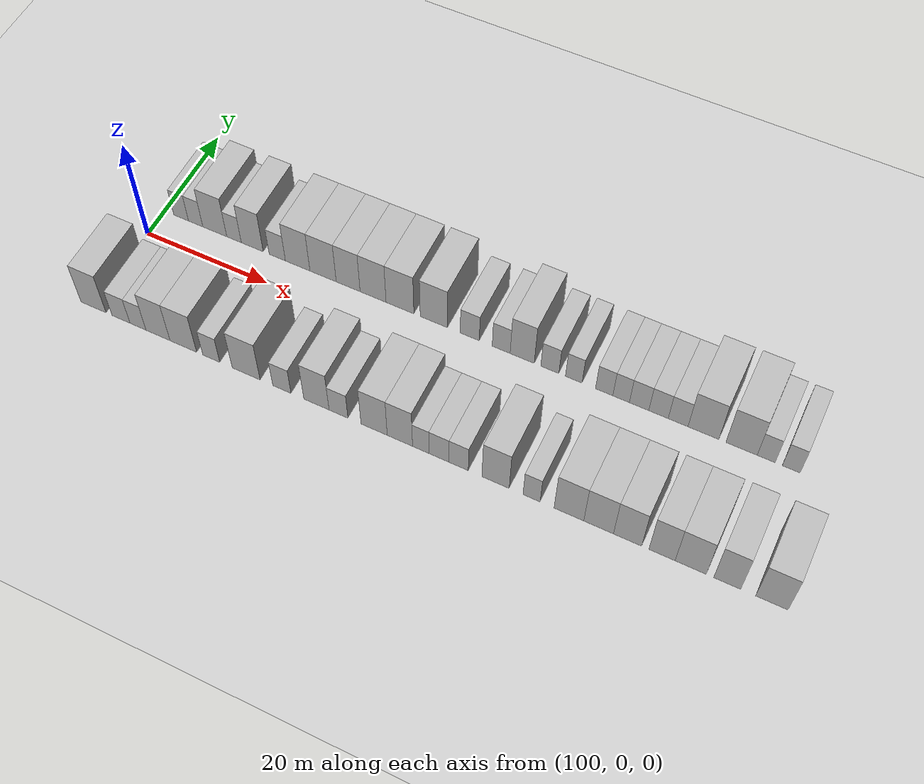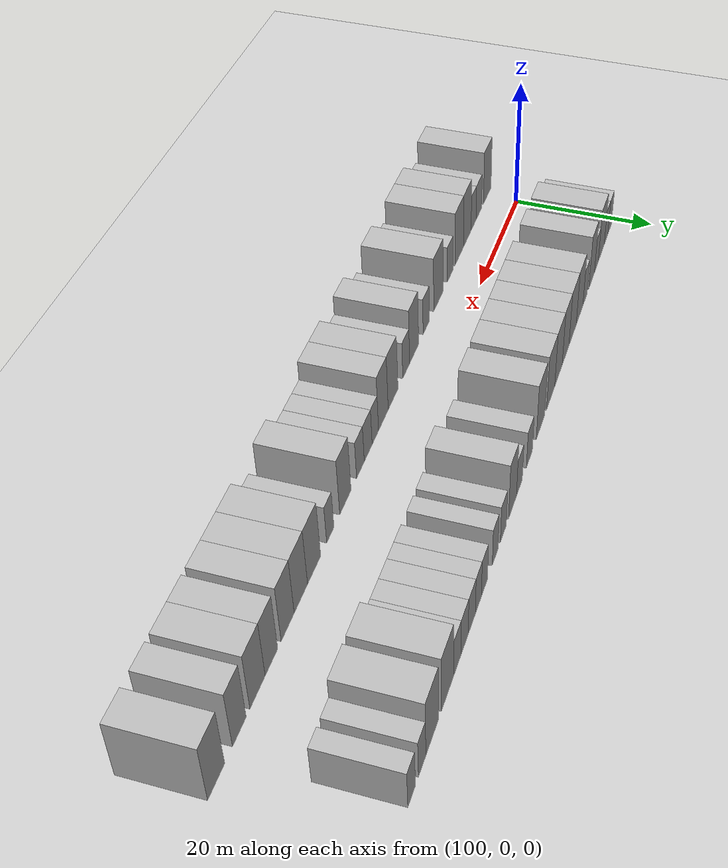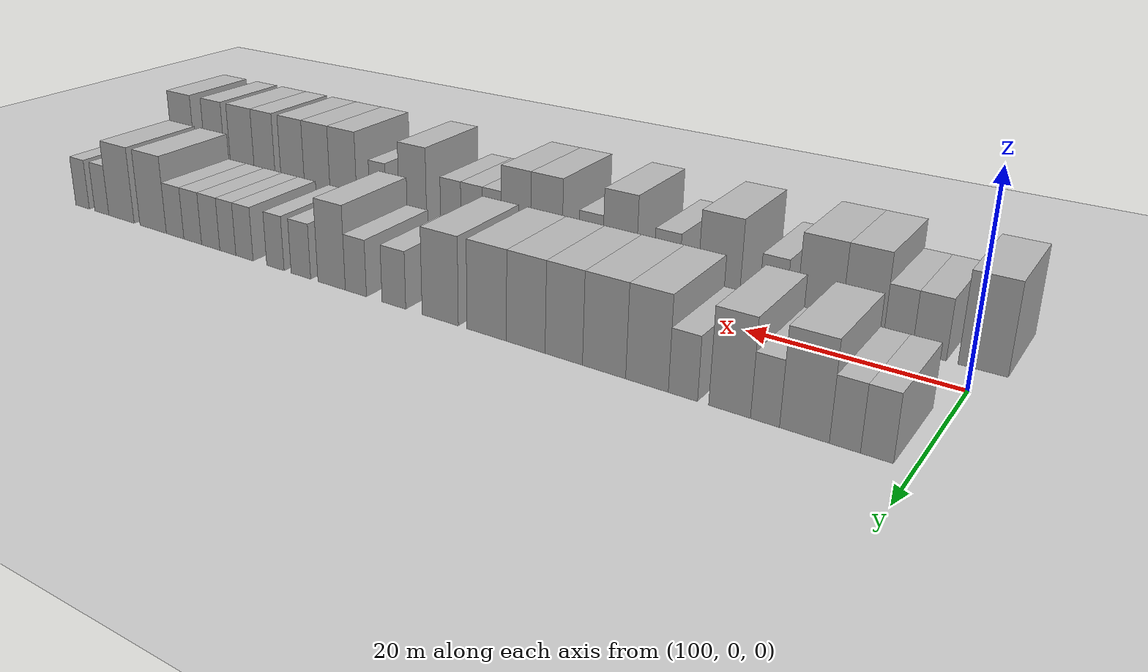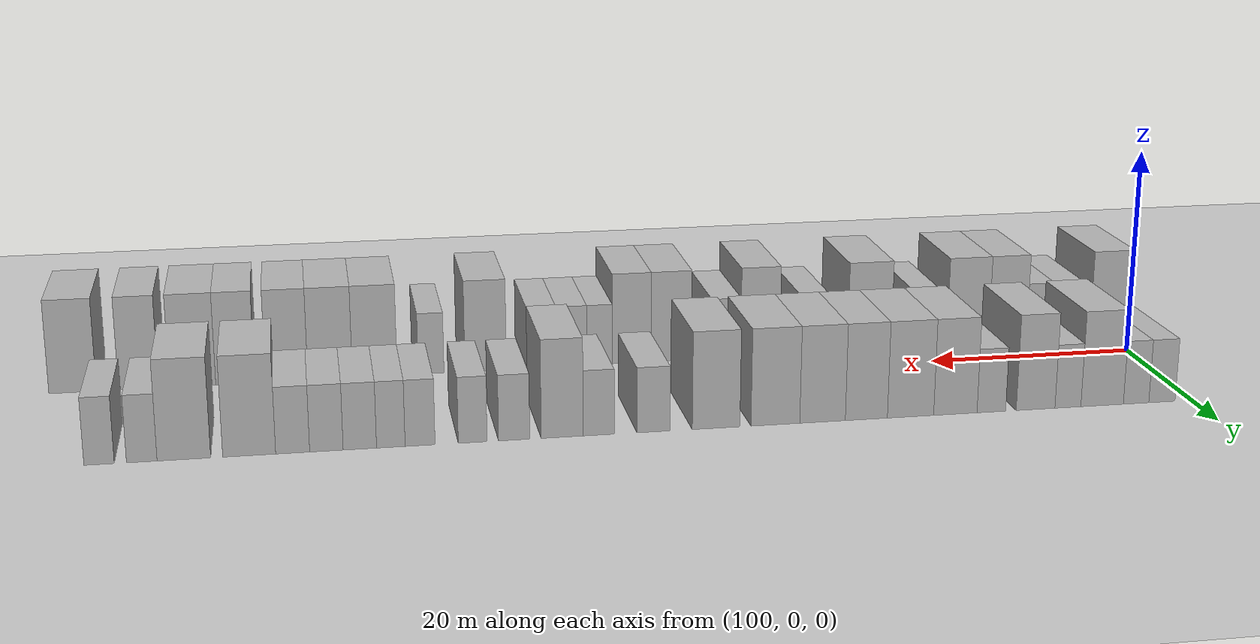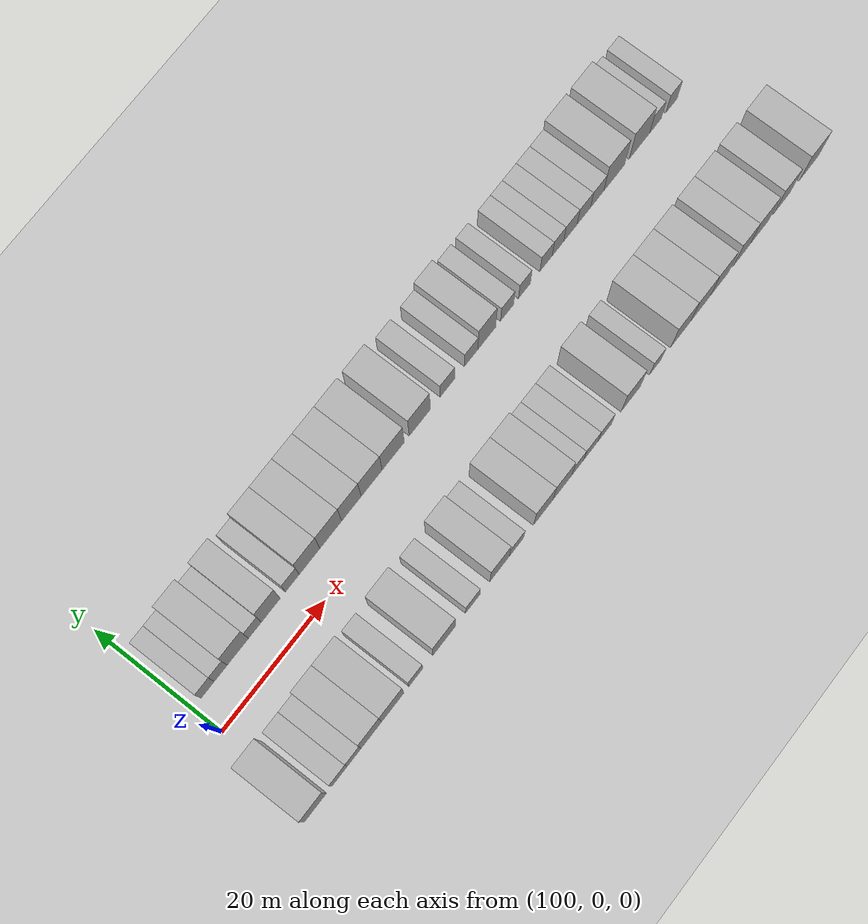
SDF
<sdf version="1.6">
 <world name="default">
  <include>
   <name>ground_plane_2</name>
   <uri>model://HANNAS_ground_plane</uri>
   <pose>100 0 0  0 0 0</pose>
  </include>
  <model name="building_28">
   <static>1</static>
   <pose>102.8704 9.5000 0 0.000000 0.000000 1.570796</pose>
   <link name="link">
    <pose>0 0 3.00 0 0 0</pose>
    <collision name="collision"><geometry><box><size>10.0000 2.5444 6.0000</size></box></geometry></collision>
    <visual name="visual">
     <cast_shadows>0</cast_shadows>
     <geometry><box><size>10.0000 2.5444 6.0000</size></box></geometry>
     <material>
      <script>
       <uri>model://HANNAS_wall/materials/scripts</uri>
       <uri>model://HANNAS_wall/materials/textures</uri>
       <name>vrc/HANNAS_wall</name>
      </script>
     </material>
    </visual>
   </link>
  </model>
  <model name="building_29">
   <static>1</static>
   <pose>105.3712 9.5000 0 0.000000 0.000000 1.570796</pose>
   <link name="link">
    <pose>0 0 3.00 0 0 0</pose>
    <collision name="collision"><geometry><box><size>10.0000 2.4571 6.0000</size></box></geometry></collision>
    <visual name="visual">
     <cast_shadows>0</cast_shadows>
     <geometry><box><size>10.0000 2.4571 6.0000</size></box></geometry>
     <material>
      <script>
       <uri>model://HANNAS_wall/materials/scripts</uri>
       <uri>model://HANNAS_wall/materials/textures</uri>
       <name>vrc/HANNAS_wall</name>
      </script>
     </material>
    </visual>
   </link>
  </model>
  <model name="building_30">
   <static>1</static>
   <pose>108.6389 9.5000 0 0.000000 0.000000 1.570796</pose>
   <link name="link">
    <pose>0 0 4.50 0 0 0</pose>
    <collision name="collision"><geometry><box><size>10.0000 4.0783 9.0000</size></box></geometry></collision>
    <visual name="visual">
     <cast_shadows>0</cast_shadows>
     <geometry><box><size>10.0000 4.0783 9.0000</size></box></geometry>
     <material>
      <script>
       <uri>model://HANNAS_wall/materials/scripts</uri>
       <uri>model://HANNAS_wall/materials/textures</uri>
       <name>vrc/HANNAS_wall</name>
      </script>
     </material>
    </visual>
   </link>
  </model>
  <model name="building_31">
   <static>1</static>
   <pose>111.9144 9.5000 0 0.000000 0.000000 1.570796</pose>
   <link name="link">
    <pose>0 0 3.00 0 0 0</pose>
    <collision name="collision"><geometry><box><size>10.0000 2.4729 6.0000</size></box></geometry></collision>
    <visual name="visual">
     <cast_shadows>0</cast_shadows>
     <geometry><box><size>10.0000 2.4729 6.0000</size></box></geometry>
     <material>
      <script>
       <uri>model://HANNAS_wall/materials/scripts</uri>
       <uri>model://HANNAS_wall/materials/textures</uri>
       <name>vrc/HANNAS_wall</name>
      </script>
     </material>
    </visual>
   </link>
  </model>
  <model name="building_32">
   <static>1</static>
   <pose>114.9888 9.5000 0 0.000000 0.000000 1.570796</pose>
   <link name="link">
    <pose>0 0 4.50 0 0 0</pose>
    <collision name="collision"><geometry><box><size>10.0000 3.6758 9.0000</size></box></geometry></collision>
    <visual name="visual">
     <cast_shadows>0</cast_shadows>
     <geometry><box><size>10.0000 3.6758 9.0000</size></box></geometry>
     <material>
      <script>
       <uri>model://HANNAS_wall/materials/scripts</uri>
       <uri>model://HANNAS_wall/materials/textures</uri>
       <name>vrc/HANNAS_wall</name>
      </script>
     </material>
    </visual>
   </link>
  </model>
  <model name="building_33">
   <static>1</static>
   <pose>119.1749 9.5000 0 0.000000 0.000000 1.570796</pose>
   <link name="link">
    <pose>0 0 3.00 0 0 0</pose>
    <collision name="collision"><geometry><box><size>10.0000 2.6965 6.0000</size></box></geometry></collision>
    <visual name="visual">
     <cast_shadows>0</cast_shadows>
     <geometry><box><size>10.0000 2.6965 6.0000</size></box></geometry>
     <material>
      <script>
       <uri>model://HANNAS_wall/materials/scripts</uri>
       <uri>model://HANNAS_wall/materials/textures</uri>
       <name>vrc/HANNAS_wall</name>
      </script>
     </material>
    </visual>
   </link>
  </model>
  <model name="building_34">
   <static>1</static>
   <pose>122.5551 9.5000 0 0.000000 0.000000 1.570796</pose>
   <link name="link">
    <pose>0 0 4.50 0 0 0</pose>
    <collision name="collision"><geometry><box><size>10.0000 4.0638 9.0000</size></box></geometry></collision>
    <visual name="visual">
     <cast_shadows>0</cast_shadows>
     <geometry><box><size>10.0000 4.0638 9.0000</size></box></geometry>
     <material>
      <script>
       <uri>model://HANNAS_wall/materials/scripts</uri>
       <uri>model://HANNAS_wall/materials/textures</uri>
       <name>vrc/HANNAS_wall</name>
      </script>
     </material>
    </visual>
   </link>
  </model>
  <model name="building_35">
   <static>1</static>
   <pose>126.7387 9.5000 0 0.000000 0.000000 1.570796</pose>
   <link name="link">
    <pose>0 0 4.50 0 0 0</pose>
    <collision name="collision"><geometry><box><size>10.0000 4.3034 9.0000</size></box></geometry></collision>
    <visual name="visual">
     <cast_shadows>0</cast_shadows>
     <geometry><box><size>10.0000 4.3034 9.0000</size></box></geometry>
     <material>
      <script>
       <uri>model://HANNAS_wall/materials/scripts</uri>
       <uri>model://HANNAS_wall/materials/textures</uri>
       <name>vrc/HANNAS_wall</name>
      </script>
     </material>
    </visual>
   </link>
  </model>
  <model name="building_36">
   <static>1</static>
   <pose>130.8312 9.5000 0 0.000000 0.000000 1.570796</pose>
   <link name="link">
    <pose>0 0 4.50 0 0 0</pose>
    <collision name="collision"><geometry><box><size>10.0000 3.8817 9.0000</size></box></geometry></collision>
    <visual name="visual">
     <cast_shadows>0</cast_shadows>
     <geometry><box><size>10.0000 3.8817 9.0000</size></box></geometry>
     <material>
      <script>
       <uri>model://HANNAS_wall/materials/scripts</uri>
       <uri>model://HANNAS_wall/materials/textures</uri>
       <name>vrc/HANNAS_wall</name>
      </script>
     </material>
    </visual>
   </link>
  </model>
  <model name="building_37">
   <static>1</static>
   <pose>134.8598 9.5000 0 0.000000 0.000000 1.570796</pose>
   <link name="link">
    <pose>0 0 4.50 0 0 0</pose>
    <collision name="collision"><geometry><box><size>10.0000 4.1754 9.0000</size></box></geometry></collision>
    <visual name="visual">
     <cast_shadows>0</cast_shadows>
     <geometry><box><size>10.0000 4.1754 9.0000</size></box></geometry>
     <material>
      <script>
       <uri>model://HANNAS_wall/materials/scripts</uri>
       <uri>model://HANNAS_wall/materials/textures</uri>
       <name>vrc/HANNAS_wall</name>
      </script>
     </material>
    </visual>
   </link>
  </model>
  <model name="building_38">
   <static>1</static>
   <pose>139.1680 9.5000 0 0.000000 0.000000 1.570796</pose>
   <link name="link">
    <pose>0 0 4.50 0 0 0</pose>
    <collision name="collision"><geometry><box><size>10.0000 4.4410 9.0000</size></box></geometry></collision>
    <visual name="visual">
     <cast_shadows>0</cast_shadows>
     <geometry><box><size>10.0000 4.4410 9.0000</size></box></geometry>
     <material>
      <script>
       <uri>model://HANNAS_wall/materials/scripts</uri>
       <uri>model://HANNAS_wall/materials/textures</uri>
       <name>vrc/HANNAS_wall</name>
      </script>
     </material>
    </visual>
   </link>
  </model>
  <model name="building_39">
   <static>1</static>
   <pose>144.5347 9.5000 0 0.000000 0.000000 1.570796</pose>
   <link name="link">
    <pose>0 0 4.50 0 0 0</pose>
    <collision name="collision"><geometry><box><size>10.0000 4.2924 9.0000</size></box></geometry></collision>
    <visual name="visual">
     <cast_shadows>0</cast_shadows>
     <geometry><box><size>10.0000 4.2924 9.0000</size></box></geometry>
     <material>
      <script>
       <uri>model://HANNAS_wall/materials/scripts</uri>
       <uri>model://HANNAS_wall/materials/textures</uri>
       <name>vrc/HANNAS_wall</name>
      </script>
     </material>
    </visual>
   </link>
  </model>
  <model name="building_40">
   <static>1</static>
   <pose>150.1584 9.5000 0 0.000000 0.000000 1.570796</pose>
   <link name="link">
    <pose>0 0 3.00 0 0 0</pose>
    <collision name="collision"><geometry><box><size>10.0000 2.9550 6.0000</size></box></geometry></collision>
    <visual name="visual">
     <cast_shadows>0</cast_shadows>
     <geometry><box><size>10.0000 2.9550 6.0000</size></box></geometry>
     <material>
      <script>
       <uri>model://HANNAS_wall/materials/scripts</uri>
       <uri>model://HANNAS_wall/materials/textures</uri>
       <name>vrc/HANNAS_wall</name>
      </script>
     </material>
    </visual>
   </link>
  </model>
  <model name="building_41">
   <static>1</static>
   <pose>155.0133 9.5000 0 0.000000 0.000000 1.570796</pose>
   <link name="link">
    <pose>0 0 3.00 0 0 0</pose>
    <collision name="collision"><geometry><box><size>10.0000 2.7546 6.0000</size></box></geometry></collision>
    <visual name="visual">
     <cast_shadows>0</cast_shadows>
     <geometry><box><size>10.0000 2.7546 6.0000</size></box></geometry>
     <material>
      <script>
       <uri>model://HANNAS_wall/materials/scripts</uri>
       <uri>model://HANNAS_wall/materials/textures</uri>
       <name>vrc/HANNAS_wall</name>
      </script>
     </material>
    </visual>
   </link>
  </model>
  <model name="building_42">
   <static>1</static>
   <pose>158.2320 9.5000 0 0.000000 0.000000 1.570796</pose>
   <link name="link">
    <pose>0 0 4.50 0 0 0</pose>
    <collision name="collision"><geometry><box><size>10.0000 3.6830 9.0000</size></box></geometry></collision>
    <visual name="visual">
     <cast_shadows>0</cast_shadows>
     <geometry><box><size>10.0000 3.6830 9.0000</size></box></geometry>
     <material>
      <script>
       <uri>model://HANNAS_wall/materials/scripts</uri>
       <uri>model://HANNAS_wall/materials/textures</uri>
       <name>vrc/HANNAS_wall</name>
      </script>
     </material>
    </visual>
   </link>
  </model>
  <model name="building_43">
   <static>1</static>
   <pose>162.4334 9.5000 0 0.000000 0.000000 1.570796</pose>
   <link name="link">
    <pose>0 0 3.00 0 0 0</pose>
    <collision name="collision"><geometry><box><size>10.0000 2.7199 6.0000</size></box></geometry></collision>
    <visual name="visual">
     <cast_shadows>0</cast_shadows>
     <geometry><box><size>10.0000 2.7199 6.0000</size></box></geometry>
     <material>
      <script>
       <uri>model://HANNAS_wall/materials/scripts</uri>
       <uri>model://HANNAS_wall/materials/textures</uri>
       <name>vrc/HANNAS_wall</name>
      </script>
     </material>
    </visual>
   </link>
  </model>
  <model name="building_44">
   <static>1</static>
   <pose>166.0400 9.5000 0 0.000000 0.000000 1.570796</pose>
   <link name="link">
    <pose>0 0 3.00 0 0 0</pose>
    <collision name="collision"><geometry><box><size>10.0000 2.4934 6.0000</size></box></geometry></collision>
    <visual name="visual">
     <cast_shadows>0</cast_shadows>
     <geometry><box><size>10.0000 2.4934 6.0000</size></box></geometry>
     <material>
      <script>
       <uri>model://HANNAS_wall/materials/scripts</uri>
       <uri>model://HANNAS_wall/materials/textures</uri>
       <name>vrc/HANNAS_wall</name>
      </script>
     </material>
    </visual>
   </link>
  </model>
  <model name="building_45">
   <static>1</static>
   <pose>170.5733 9.5000 0 0.000000 0.000000 1.570796</pose>
   <link name="link">
    <pose>0 0 3.00 0 0 0</pose>
    <collision name="collision"><geometry><box><size>10.0000 2.5731 6.0000</size></box></geometry></collision>
    <visual name="visual">
     <cast_shadows>0</cast_shadows>
     <geometry><box><size>10.0000 2.5731 6.0000</size></box></geometry>
     <material>
      <script>
       <uri>model://HANNAS_wall/materials/scripts</uri>
       <uri>model://HANNAS_wall/materials/textures</uri>
       <name>vrc/HANNAS_wall</name>
      </script>
     </material>
    </visual>
   </link>
  </model>
  <model name="building_46">
   <static>1</static>
   <pose>173.0829 9.5000 0 0.000000 0.000000 1.570796</pose>
   <link name="link">
    <pose>0 0 3.00 0 0 0</pose>
    <collision name="collision"><geometry><box><size>10.0000 2.4460 6.0000</size></box></geometry></collision>
    <visual name="visual">
     <cast_shadows>0</cast_shadows>
     <geometry><box><size>10.0000 2.4460 6.0000</size></box></geometry>
     <material>
      <script>
       <uri>model://HANNAS_wall/materials/scripts</uri>
       <uri>model://HANNAS_wall/materials/textures</uri>
       <name>vrc/HANNAS_wall</name>
      </script>
     </material>
    </visual>
   </link>
  </model>
  <model name="building_47">
   <static>1</static>
   <pose>175.7271 9.5000 0 0.000000 0.000000 1.570796</pose>
   <link name="link">
    <pose>0 0 3.00 0 0 0</pose>
    <collision name="collision"><geometry><box><size>10.0000 2.8425 6.0000</size></box></geometry></collision>
    <visual name="visual">
     <cast_shadows>0</cast_shadows>
     <geometry><box><size>10.0000 2.8425 6.0000</size></box></geometry>
     <material>
      <script>
       <uri>model://HANNAS_wall/materials/scripts</uri>
       <uri>model://HANNAS_wall/materials/textures</uri>
       <name>vrc/HANNAS_wall</name>
      </script>
     </material>
    </visual>
   </link>
  </model>
  <model name="building_48">
   <static>1</static>
   <pose>178.5657 9.5000 0 0.000000 0.000000 1.570796</pose>
   <link name="link">
    <pose>0 0 3.00 0 0 0</pose>
    <collision name="collision"><geometry><box><size>10.0000 2.8347 6.0000</size></box></geometry></collision>
    <visual name="visual">
     <cast_shadows>0</cast_shadows>
     <geometry><box><size>10.0000 2.8347 6.0000</size></box></geometry>
     <material>
      <script>
       <uri>model://HANNAS_wall/materials/scripts</uri>
       <uri>model://HANNAS_wall/materials/textures</uri>
       <name>vrc/HANNAS_wall</name>
      </script>
     </material>
    </visual>
   </link>
  </model>
  <model name="building_49">
   <static>1</static>
   <pose>181.4146 9.5000 0 0.000000 0.000000 1.570796</pose>
   <link name="link">
    <pose>0 0 3.00 0 0 0</pose>
    <collision name="collision"><geometry><box><size>10.0000 2.8631 6.0000</size></box></geometry></collision>
    <visual name="visual">
     <cast_shadows>0</cast_shadows>
     <geometry><box><size>10.0000 2.8631 6.0000</size></box></geometry>
     <material>
      <script>
       <uri>model://HANNAS_wall/materials/scripts</uri>
       <uri>model://HANNAS_wall/materials/textures</uri>
       <name>vrc/HANNAS_wall</name>
      </script>
     </material>
    </visual>
   </link>
  </model>
  <model name="building_50">
   <static>1</static>
   <pose>185.0627 9.5000 0 0.000000 0.000000 1.570796</pose>
   <link name="link">
    <pose>0 0 4.50 0 0 0</pose>
    <collision name="collision"><geometry><box><size>10.0000 4.4331 9.0000</size></box></geometry></collision>
    <visual name="visual">
     <cast_shadows>0</cast_shadows>
     <geometry><box><size>10.0000 4.4331 9.0000</size></box></geometry>
     <material>
      <script>
       <uri>model://HANNAS_wall/materials/scripts</uri>
       <uri>model://HANNAS_wall/materials/textures</uri>
       <name>vrc/HANNAS_wall</name>
      </script>
     </material>
    </visual>
   </link>
  </model>
  <model name="building_51">
   <static>1</static>
   <pose>190.4981 9.5000 0 0.000000 0.000000 1.570796</pose>
   <link name="link">
    <pose>0 0 4.50 0 0 0</pose>
    <collision name="collision"><geometry><box><size>10.0000 4.4377 9.0000</size></box></geometry></collision>
    <visual name="visual">
     <cast_shadows>0</cast_shadows>
     <geometry><box><size>10.0000 4.4377 9.0000</size></box></geometry>
     <material>
      <script>
       <uri>model://HANNAS_wall/materials/scripts</uri>
       <uri>model://HANNAS_wall/materials/textures</uri>
       <name>vrc/HANNAS_wall</name>
      </script>
     </material>
    </visual>
   </link>
  </model>
  <model name="building_52">
   <static>1</static>
   <pose>193.9771 9.5000 0 0.000000 0.000000 1.570796</pose>
   <link name="link">
    <pose>0 0 3.00 0 0 0</pose>
    <collision name="collision"><geometry><box><size>10.0000 2.5204 6.0000</size></box></geometry></collision>
    <visual name="visual">
     <cast_shadows>0</cast_shadows>
     <geometry><box><size>10.0000 2.5204 6.0000</size></box></geometry>
     <material>
      <script>
       <uri>model://HANNAS_wall/materials/scripts</uri>
       <uri>model://HANNAS_wall/materials/textures</uri>
       <name>vrc/HANNAS_wall</name>
      </script>
     </material>
    </visual>
   </link>
  </model>
  <model name="building_53">
   <static>1</static>
   <pose>197.4788 9.5000 0 0.000000 0.000000 1.570796</pose>
   <link name="link">
    <pose>0 0 3.00 0 0 0</pose>
    <collision name="collision"><geometry><box><size>10.0000 2.4830 6.0000</size></box></geometry></collision>
    <visual name="visual">
     <cast_shadows>0</cast_shadows>
     <geometry><box><size>10.0000 2.4830 6.0000</size></box></geometry>
     <material>
      <script>
       <uri>model://HANNAS_wall/materials/scripts</uri>
       <uri>model://HANNAS_wall/materials/textures</uri>
       <name>vrc/HANNAS_wall</name>
      </script>
     </material>
    </visual>
   </link>
  </model>
  <model name="building_78">
   <static>1</static>
   <pose>99.9613 -9.5000 0 0.000000 0.000000 1.570796</pose>
   <link name="link">
    <pose>0 0 4.50 0 0 0</pose>
    <collision name="collision"><geometry><box><size>10.0000 4.2219 9.0000</size></box></geometry></collision>
    <visual name="visual">
     <cast_shadows>0</cast_shadows>
     <geometry><box><size>10.0000 4.2219 9.0000</size></box></geometry>
     <material>
      <script>
       <uri>model://HANNAS_wall/materials/scripts</uri>
       <uri>model://HANNAS_wall/materials/textures</uri>
       <name>vrc/HANNAS_wall</name>
      </script>
     </material>
    </visual>
   </link>
  </model>
  <model name="building_79">
   <static>1</static>
   <pose>104.5692 -9.5000 0 0.000000 0.000000 1.570796</pose>
   <link name="link">
    <pose>0 0 3.00 0 0 0</pose>
    <collision name="collision"><geometry><box><size>10.0000 2.9939 6.0000</size></box></geometry></collision>
    <visual name="visual">
     <cast_shadows>0</cast_shadows>
     <geometry><box><size>10.0000 2.9939 6.0000</size></box></geometry>
     <material>
      <script>
       <uri>model://HANNAS_wall/materials/scripts</uri>
       <uri>model://HANNAS_wall/materials/textures</uri>
       <name>vrc/HANNAS_wall</name>
      </script>
     </material>
    </visual>
   </link>
  </model>
  <model name="building_80">
   <static>1</static>
   <pose>107.3994 -9.5000 0 0.000000 0.000000 1.570796</pose>
   <link name="link">
    <pose>0 0 3.00 0 0 0</pose>
    <collision name="collision"><geometry><box><size>10.0000 2.6664 6.0000</size></box></geometry></collision>
    <visual name="visual">
     <cast_shadows>0</cast_shadows>
     <geometry><box><size>10.0000 2.6664 6.0000</size></box></geometry>
     <material>
      <script>
       <uri>model://HANNAS_wall/materials/scripts</uri>
       <uri>model://HANNAS_wall/materials/textures</uri>
       <name>vrc/HANNAS_wall</name>
      </script>
     </material>
    </visual>
   </link>
  </model>
  <model name="building_81">
   <static>1</static>
   <pose>110.7087 -9.5000 0 0.000000 0.000000 1.570796</pose>
   <link name="link">
    <pose>0 0 4.50 0 0 0</pose>
    <collision name="collision"><geometry><box><size>10.0000 3.9523 9.0000</size></box></geometry></collision>
    <visual name="visual">
     <cast_shadows>0</cast_shadows>
     <geometry><box><size>10.0000 3.9523 9.0000</size></box></geometry>
     <material>
      <script>
       <uri>model://HANNAS_wall/materials/scripts</uri>
       <uri>model://HANNAS_wall/materials/textures</uri>
       <name>vrc/HANNAS_wall</name>
      </script>
     </material>
    </visual>
   </link>
  </model>
  <model name="building_82">
   <static>1</static>
   <pose>114.8561 -9.5000 0 0.000000 0.000000 1.570796</pose>
   <link name="link">
    <pose>0 0 4.50 0 0 0</pose>
    <collision name="collision"><geometry><box><size>10.0000 4.3426 9.0000</size></box></geometry></collision>
    <visual name="visual">
     <cast_shadows>0</cast_shadows>
     <geometry><box><size>10.0000 4.3426 9.0000</size></box></geometry>
     <material>
      <script>
       <uri>model://HANNAS_wall/materials/scripts</uri>
       <uri>model://HANNAS_wall/materials/textures</uri>
       <name>vrc/HANNAS_wall</name>
      </script>
     </material>
    </visual>
   </link>
  </model>
  <model name="building_83">
   <static>1</static>
   <pose>119.3944 -9.5000 0 0.000000 0.000000 1.570796</pose>
   <link name="link">
    <pose>0 0 3.00 0 0 0</pose>
    <collision name="collision"><geometry><box><size>10.0000 2.7340 6.0000</size></box></geometry></collision>
    <visual name="visual">
     <cast_shadows>0</cast_shadows>
     <geometry><box><size>10.0000 2.7340 6.0000</size></box></geometry>
     <material>
      <script>
       <uri>model://HANNAS_wall/materials/scripts</uri>
       <uri>model://HANNAS_wall/materials/textures</uri>
       <name>vrc/HANNAS_wall</name>
      </script>
     </material>
    </visual>
   </link>
  </model>
  <model name="building_84">
   <static>1</static>
   <pose>124.9849 -9.5000 0 0.000000 0.000000 1.570796</pose>
   <link name="link">
    <pose>0 0 4.50 0 0 0</pose>
    <collision name="collision"><geometry><box><size>10.0000 4.4470 9.0000</size></box></geometry></collision>
    <visual name="visual">
     <cast_shadows>0</cast_shadows>
     <geometry><box><size>10.0000 4.4470 9.0000</size></box></geometry>
     <material>
      <script>
       <uri>model://HANNAS_wall/materials/scripts</uri>
       <uri>model://HANNAS_wall/materials/textures</uri>
       <name>vrc/HANNAS_wall</name>
      </script>
     </material>
    </visual>
   </link>
  </model>
  <model name="building_85">
   <static>1</static>
   <pose>130.6439 -9.5000 0 0.000000 0.000000 1.570796</pose>
   <link name="link">
    <pose>0 0 3.00 0 0 0</pose>
    <collision name="collision"><geometry><box><size>10.0000 2.8711 6.0000</size></box></geometry></collision>
    <visual name="visual">
     <cast_shadows>0</cast_shadows>
     <geometry><box><size>10.0000 2.8711 6.0000</size></box></geometry>
     <material>
      <script>
       <uri>model://HANNAS_wall/materials/scripts</uri>
       <uri>model://HANNAS_wall/materials/textures</uri>
       <name>vrc/HANNAS_wall</name>
      </script>
     </material>
    </visual>
   </link>
  </model>
  <model name="building_86">
   <static>1</static>
   <pose>136.0400 -9.5000 0 0.000000 0.000000 1.570796</pose>
   <link name="link">
    <pose>0 0 4.50 0 0 0</pose>
    <collision name="collision"><geometry><box><size>10.0000 3.9212 9.0000</size></box></geometry></collision>
    <visual name="visual">
     <cast_shadows>0</cast_shadows>
     <geometry><box><size>10.0000 3.9212 9.0000</size></box></geometry>
     <material>
      <script>
       <uri>model://HANNAS_wall/materials/scripts</uri>
       <uri>model://HANNAS_wall/materials/textures</uri>
       <name>vrc/HANNAS_wall</name>
      </script>
     </material>
    </visual>
   </link>
  </model>
  <model name="building_87">
   <static>1</static>
   <pose>139.4544 -9.5000 0 0.000000 0.000000 1.570796</pose>
   <link name="link">
    <pose>0 0 3.00 0 0 0</pose>
    <collision name="collision"><geometry><box><size>10.0000 2.9076 6.0000</size></box></geometry></collision>
    <visual name="visual">
     <cast_shadows>0</cast_shadows>
     <geometry><box><size>10.0000 2.9076 6.0000</size></box></geometry>
     <material>
      <script>
       <uri>model://HANNAS_wall/materials/scripts</uri>
       <uri>model://HANNAS_wall/materials/textures</uri>
       <name>vrc/HANNAS_wall</name>
      </script>
     </material>
    </visual>
   </link>
  </model>
  <model name="building_88">
   <static>1</static>
   <pose>144.9012 -9.5000 0 0.000000 0.000000 1.570796</pose>
   <link name="link">
    <pose>0 0 4.50 0 0 0</pose>
    <collision name="collision"><geometry><box><size>10.0000 3.9860 9.0000</size></box></geometry></collision>
    <visual name="visual">
     <cast_shadows>0</cast_shadows>
     <geometry><box><size>10.0000 3.9860 9.0000</size></box></geometry>
     <material>
      <script>
       <uri>model://HANNAS_wall/materials/scripts</uri>
       <uri>model://HANNAS_wall/materials/textures</uri>
       <name>vrc/HANNAS_wall</name>
      </script>
     </material>
    </visual>
   </link>
  </model>
  <model name="building_89">
   <static>1</static>
   <pose>148.8022 -9.5000 0 0.000000 0.000000 1.570796</pose>
   <link name="link">
    <pose>0 0 4.50 0 0 0</pose>
    <collision name="collision"><geometry><box><size>10.0000 3.8161 9.0000</size></box></geometry></collision>
    <visual name="visual">
     <cast_shadows>0</cast_shadows>
     <geometry><box><size>10.0000 3.8161 9.0000</size></box></geometry>
     <material>
      <script>
       <uri>model://HANNAS_wall/materials/scripts</uri>
       <uri>model://HANNAS_wall/materials/textures</uri>
       <name>vrc/HANNAS_wall</name>
      </script>
     </material>
    </visual>
   </link>
  </model>
  <model name="building_90">
   <static>1</static>
   <pose>151.9472 -9.5000 0 0.000000 0.000000 1.570796</pose>
   <link name="link">
    <pose>0 0 3.00 0 0 0</pose>
    <collision name="collision"><geometry><box><size>10.0000 2.4738 6.0000</size></box></geometry></collision>
    <visual name="visual">
     <cast_shadows>0</cast_shadows>
     <geometry><box><size>10.0000 2.4738 6.0000</size></box></geometry>
     <material>
      <script>
       <uri>model://HANNAS_wall/materials/scripts</uri>
       <uri>model://HANNAS_wall/materials/textures</uri>
       <name>vrc/HANNAS_wall</name>
      </script>
     </material>
    </visual>
   </link>
  </model>
  <model name="building_91">
   <static>1</static>
   <pose>154.6646 -9.5000 0 0.000000 0.000000 1.570796</pose>
   <link name="link">
    <pose>0 0 3.00 0 0 0</pose>
    <collision name="collision"><geometry><box><size>10.0000 2.9609 6.0000</size></box></geometry></collision>
    <visual name="visual">
     <cast_shadows>0</cast_shadows>
     <geometry><box><size>10.0000 2.9609 6.0000</size></box></geometry>
     <material>
      <script>
       <uri>model://HANNAS_wall/materials/scripts</uri>
       <uri>model://HANNAS_wall/materials/textures</uri>
       <name>vrc/HANNAS_wall</name>
      </script>
     </material>
    </visual>
   </link>
  </model>
  <model name="building_92">
   <static>1</static>
   <pose>157.5664 -9.5000 0 0.000000 0.000000 1.570796</pose>
   <link name="link">
    <pose>0 0 3.00 0 0 0</pose>
    <collision name="collision"><geometry><box><size>10.0000 2.8425 6.0000</size></box></geometry></collision>
    <visual name="visual">
     <cast_shadows>0</cast_shadows>
     <geometry><box><size>10.0000 2.8425 6.0000</size></box></geometry>
     <material>
      <script>
       <uri>model://HANNAS_wall/materials/scripts</uri>
       <uri>model://HANNAS_wall/materials/textures</uri>
       <name>vrc/HANNAS_wall</name>
      </script>
     </material>
    </visual>
   </link>
  </model>
  <model name="building_93">
   <static>1</static>
   <pose>162.9780 -9.5000 0 0.000000 0.000000 1.570796</pose>
   <link name="link">
    <pose>0 0 4.50 0 0 0</pose>
    <collision name="collision"><geometry><box><size>10.0000 3.9807 9.0000</size></box></geometry></collision>
    <visual name="visual">
     <cast_shadows>0</cast_shadows>
     <geometry><box><size>10.0000 3.9807 9.0000</size></box></geometry>
     <material>
      <script>
       <uri>model://HANNAS_wall/materials/scripts</uri>
       <uri>model://HANNAS_wall/materials/textures</uri>
       <name>vrc/HANNAS_wall</name>
      </script>
     </material>
    </visual>
   </link>
  </model>
  <model name="building_94">
   <static>1</static>
   <pose>168.1947 -9.5000 0 0.000000 0.000000 1.570796</pose>
   <link name="link">
    <pose>0 0 3.00 0 0 0</pose>
    <collision name="collision"><geometry><box><size>10.0000 2.4528 6.0000</size></box></geometry></collision>
    <visual name="visual">
     <cast_shadows>0</cast_shadows>
     <geometry><box><size>10.0000 2.4528 6.0000</size></box></geometry>
     <material>
      <script>
       <uri>model://HANNAS_wall/materials/scripts</uri>
       <uri>model://HANNAS_wall/materials/textures</uri>
       <name>vrc/HANNAS_wall</name>
      </script>
     </material>
    </visual>
   </link>
  </model>
  <model name="building_95">
   <static>1</static>
   <pose>173.5322 -9.5000 0 0.000000 0.000000 1.570796</pose>
   <link name="link">
    <pose>0 0 4.50 0 0 0</pose>
    <collision name="collision"><geometry><box><size>10.0000 4.2222 9.0000</size></box></geometry></collision>
    <visual name="visual">
     <cast_shadows>0</cast_shadows>
     <geometry><box><size>10.0000 4.2222 9.0000</size></box></geometry>
     <material>
      <script>
       <uri>model://HANNAS_wall/materials/scripts</uri>
       <uri>model://HANNAS_wall/materials/textures</uri>
       <name>vrc/HANNAS_wall</name>
      </script>
     </material>
    </visual>
   </link>
  </model>
  <model name="building_96">
   <static>1</static>
   <pose>177.7304 -9.5000 0 0.000000 0.000000 1.570796</pose>
   <link name="link">
    <pose>0 0 4.50 0 0 0</pose>
    <collision name="collision"><geometry><box><size>10.0000 4.1743 9.0000</size></box></geometry></collision>
    <visual name="visual">
     <cast_shadows>0</cast_shadows>
     <geometry><box><size>10.0000 4.1743 9.0000</size></box></geometry>
     <material>
      <script>
       <uri>model://HANNAS_wall/materials/scripts</uri>
       <uri>model://HANNAS_wall/materials/textures</uri>
       <name>vrc/HANNAS_wall</name>
      </script>
     </material>
    </visual>
   </link>
  </model>
  <model name="building_97">
   <static>1</static>
   <pose>181.7821 -9.5000 0 0.000000 0.000000 1.570796</pose>
   <link name="link">
    <pose>0 0 4.50 0 0 0</pose>
    <collision name="collision"><geometry><box><size>10.0000 3.9290 9.0000</size></box></geometry></collision>
    <visual name="visual">
     <cast_shadows>0</cast_shadows>
     <geometry><box><size>10.0000 3.9290 9.0000</size></box></geometry>
     <material>
      <script>
       <uri>model://HANNAS_wall/materials/scripts</uri>
       <uri>model://HANNAS_wall/materials/textures</uri>
       <name>vrc/HANNAS_wall</name>
      </script>
     </material>
    </visual>
   </link>
  </model>
  <model name="building_98">
   <static>1</static>
   <pose>186.5526 -9.5000 0 0.000000 0.000000 1.570796</pose>
   <link name="link">
    <pose>0 0 4.50 0 0 0</pose>
    <collision name="collision"><geometry><box><size>10.0000 3.6121 9.0000</size></box></geometry></collision>
    <visual name="visual">
     <cast_shadows>0</cast_shadows>
     <geometry><box><size>10.0000 3.6121 9.0000</size></box></geometry>
     <material>
      <script>
       <uri>model://HANNAS_wall/materials/scripts</uri>
       <uri>model://HANNAS_wall/materials/textures</uri>
       <name>vrc/HANNAS_wall</name>
      </script>
     </material>
    </visual>
   </link>
  </model>
  <model name="building_99">
   <static>1</static>
   <pose>190.4813 -9.5000 0 0.000000 0.000000 1.570796</pose>
   <link name="link">
    <pose>0 0 4.50 0 0 0</pose>
    <collision name="collision"><geometry><box><size>10.0000 4.2452 9.0000</size></box></geometry></collision>
    <visual name="visual">
     <cast_shadows>0</cast_shadows>
     <geometry><box><size>10.0000 4.2452 9.0000</size></box></geometry>
     <material>
      <script>
       <uri>model://HANNAS_wall/materials/scripts</uri>
       <uri>model://HANNAS_wall/materials/textures</uri>
       <name>vrc/HANNAS_wall</name>
      </script>
     </material>
    </visual>
   </link>
  </model>
  <model name="building_100">
   <static>1</static>
   <pose>195.4216 -9.5000 0 0.000000 0.000000 1.570796</pose>
   <link name="link">
    <pose>0 0 4.50 0 0 0</pose>
    <collision name="collision"><geometry><box><size>10.0000 3.6355 9.0000</size></box></geometry></collision>
    <visual name="visual">
     <cast_shadows>0</cast_shadows>
     <geometry><box><size>10.0000 3.6355 9.0000</size></box></geometry>
     <material>
      <script>
       <uri>model://HANNAS_wall/materials/scripts</uri>
       <uri>model://HANNAS_wall/materials/textures</uri>
       <name>vrc/HANNAS_wall</name>
      </script>
     </material>
    </visual>
   </link>
  </model>
  <model name="building_101">
   <static>1</static>
   <pose>201.3853 -9.5000 0 0.000000 0.000000 1.570796</pose>
   <link name="link">
    <pose>0 0 4.50 0 0 0</pose>
    <collision name="collision"><geometry><box><size>10.0000 4.2917 9.0000</size></box></geometry></collision>
    <visual name="visual">
     <cast_shadows>0</cast_shadows>
     <geometry><box><size>10.0000 4.2917 9.0000</size></box></geometry>
     <material>
      <script>
       <uri>model://HANNAS_wall/materials/scripts</uri>
       <uri>model://HANNAS_wall/materials/textures</uri>
       <name>vrc/HANNAS_wall</name>
      </script>
     </material>
    </visual>
   </link>
  </model>
 </world>
</sdf>
